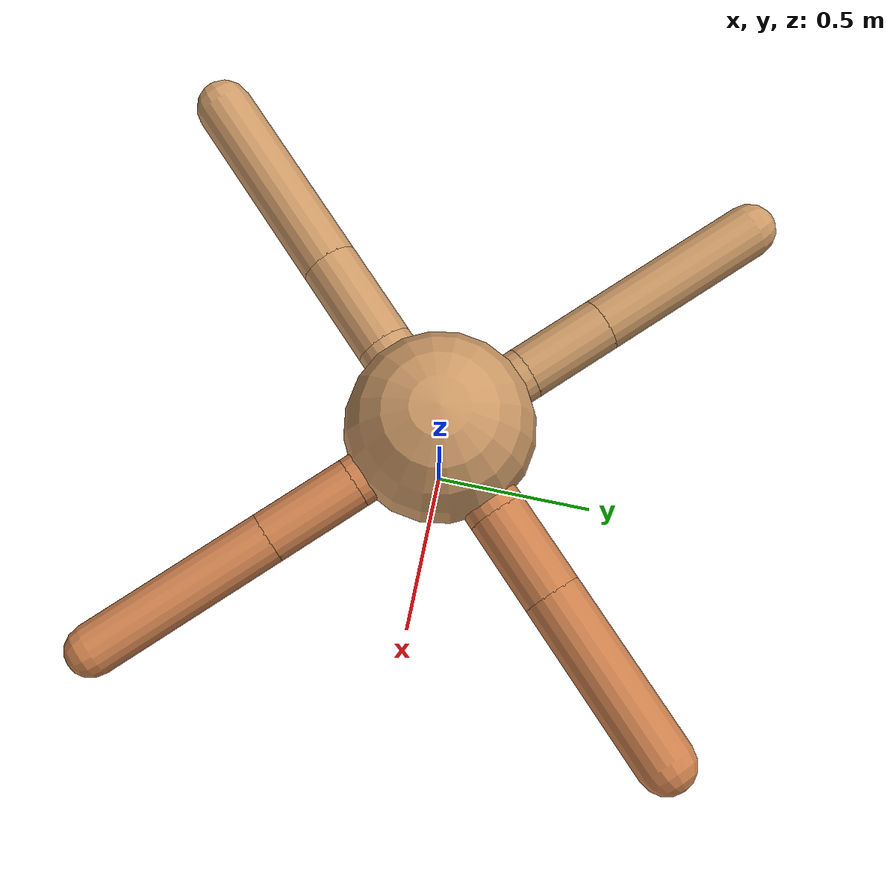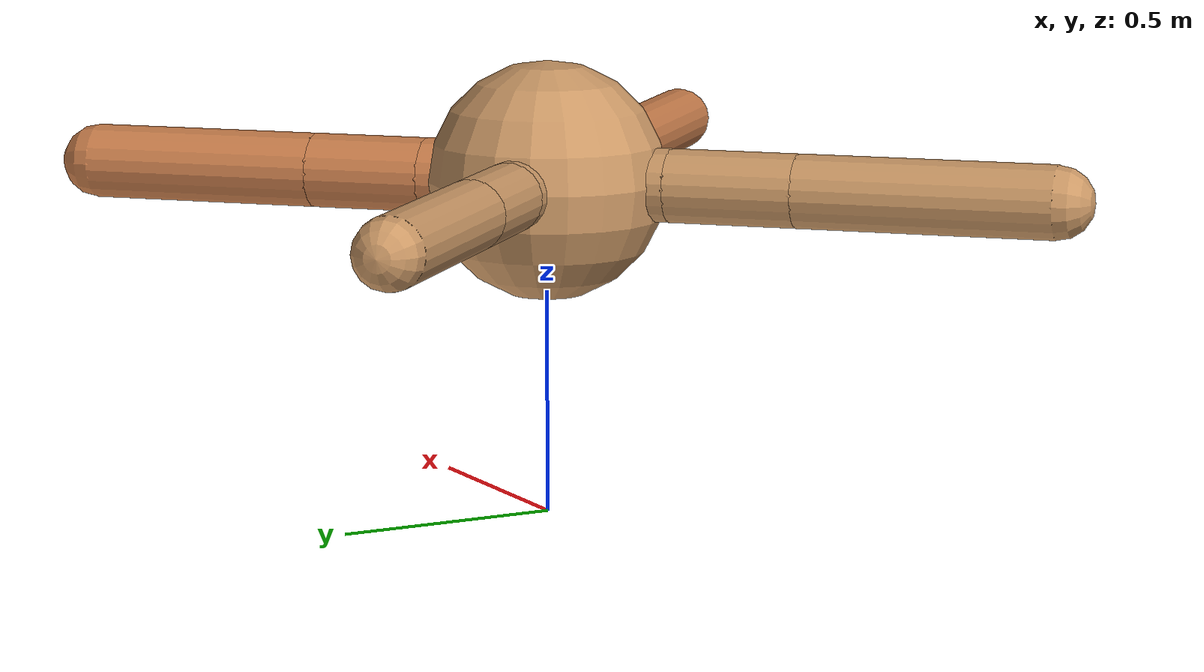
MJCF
<?xml version="1.0" ?>
<mujoco model="ant">

	<compiler angle="degree" coordinate="local" inertiafromgeom="true"/>

	<option integrator="RK4" timestep="0.01"/>

	<custom>

		<numeric data="0.0 0.0 0.55 1.0 0.0 0.0 0.0 0.0 1.0 0.0 -1.0 0.0 -1.0 0.0 1.0" name="init_qpos"/>

	</custom>

	<default>

		<joint armature="1" damping="1" limited="true"/>

		<geom conaffinity="0" condim="3" density="5.0" friction="1.5 0.1 0.1" margin="0.01" rgba="0.8 0.6 0.4 1"/>

	</default>

	<worldbody>

		<body name="torso" pos="0 0 0.75">

			<geom name="torso_geom" pos="0 0 0" size="0.2668439480129319" type="sphere"/>

			<!--joint armature="0" damping="0" limited="false" margin="0.01" name="root" pos="0 0 0" type="free"/-->

			<body name="front_left_leg" pos="0 0 0">

				<geom fromto="0 0 0 0.2 0.2 0" name="aux_1_geom" size="0.08315345297204559" type="capsule" rgba=".8 .5 .3 1"/>

				<body name="aux_1" pos="0.2 0.2 0">

					<joint axis="0 0 1" name="hip_1" pos="0.0 0.0 0.0" range="-40 40" type="hinge"/>

					<geom fromto="0 0 0 0.18637061278568448 0.18637061278568448 0" name="left_leg_geom" size="0.08315345297204559" type="capsule" rgba=".8 .5 .3 1"/>

					<body pos="0.18637061278568448 0.18637061278568448 0" name="front_left_foot">

						<joint axis="-1 1 0" name="ankle_1" pos="0.0 0.0 0.0" range="30 100" type="hinge"/>

						<geom fromto="0 0 0 0.37274122557136896 0.37274122557136896 0" name="left_ankle_geom" size="0.08315345297204559" type="capsule" rgba=".8 .5 .3 1"/>

					</body>

				</body>

			</body>

			<body name="front_right_leg" pos="0 0 0">

				<geom fromto="0 0 0 -0.2 0.2 0" name="aux_2_geom" size="0.07714815135346935" type="capsule"/>

				<body name="aux_2" pos="-0.2 0.2 0">

					<joint axis="0 0 1" name="hip_2" pos="0.0 0.0 0.0" range="-40 40" type="hinge"/>

					<geom fromto="0 0 0 -0.1807230383905581 0.1807230383905581 0" name="right_leg_geom" size="0.07714815135346935" type="capsule"/>

					<body pos="-0.1807230383905581 0.1807230383905581 0" name="front_right_foot">

						<joint axis="1 1 0" name="ankle_2" pos="0.0 0.0 0.0" range="-100 -30" type="hinge"/>

						<geom fromto="0 0 0 -0.3614460767811162 0.3614460767811162 0" name="right_ankle_geom" size="0.07714815135346935" type="capsule"/>

					</body>

				</body>

			</body>

			<body name="left_back_leg" pos="0 0 0">

				<geom fromto="0 0 0 -0.2 -0.2 0" name="aux_3_geom" size="0.08151362863417885" type="capsule"/>

				<body name="aux_3" pos="-0.2 -0.2 0">

					<joint axis="0 0 1" name="hip_3" pos="0.0 0.0 0.0" range="-40 40" type="hinge"/>

					<geom fromto="0 0 0 -0.20192650092213182 -0.20192650092213182 0" name="back_leg_geom" size="0.08151362863417885" type="capsule"/>

					<body pos="-0.20192650092213182 -0.20192650092213182 0" name="left_back_foot">

						<joint axis="-1 1 0" name="ankle_3" pos="0.0 0.0 0.0" range="-100 -30" type="hinge"/>

						<geom fromto="0 0 0 -0.40385300184426365 -0.40385300184426365 0" name="third_ankle_geom" size="0.08151362863417885" type="capsule"/>

					</body>

				</body>

			</body>

			<body name="right_back_leg" pos="0 0 0">

				<geom fromto="0 0 0 0.2 -0.2 0" name="aux_4_geom" size="0.07378136450978623" type="capsule" rgba=".8 .5 .3 1"/>

				<body name="aux_4" pos="0.2 -0.2 0">

					<joint axis="0 0 1" name="hip_4" pos="0.0 0.0 0.0" range="-40 40" type="hinge"/>

					<geom fromto="0 0 0 0.19341606970074682 -0.19341606970074682 0" name="rightback_leg_geom" size="0.07378136450978623" type="capsule" rgba=".8 .5 .3 1"/>

					<body pos="0.19341606970074682 -0.19341606970074682 0" name="right_back_foot">

						<joint axis="1 1 0" name="ankle_4" pos="0.0 0.0 0.0" range="30 100" type="hinge"/>

						<geom fromto="0 0 0 0.38683213940149364 -0.38683213940149364 0" name="fourth_ankle_geom" size="0.07378136450978623" type="capsule" rgba=".8 .5 .3 1"/>

					</body>

				</body>

			</body>

		</body>

	</worldbody>

	<actuator>

		<motor ctrllimited="true" ctrlrange="-1.0 1.0" joint="hip_4" gear="150"/>

		<motor ctrllimited="true" ctrlrange="-1.0 1.0" joint="ankle_4" gear="150"/>

		<motor ctrllimited="true" ctrlrange="-1.0 1.0" joint="hip_1" gear="150"/>

		<motor ctrllimited="true" ctrlrange="-1.0 1.0" joint="ankle_1" gear="150"/>

		<motor ctrllimited="true" ctrlrange="-1.0 1.0" joint="hip_2" gear="150"/>

		<motor ctrllimited="true" ctrlrange="-1.0 1.0" joint="ankle_2" gear="150"/>

		<motor ctrllimited="true" ctrlrange="-1.0 1.0" joint="hip_3" gear="150"/>

		<motor ctrllimited="true" ctrlrange="-1.0 1.0" joint="ankle_3" gear="150"/>

	</actuator>

</mujoco>
